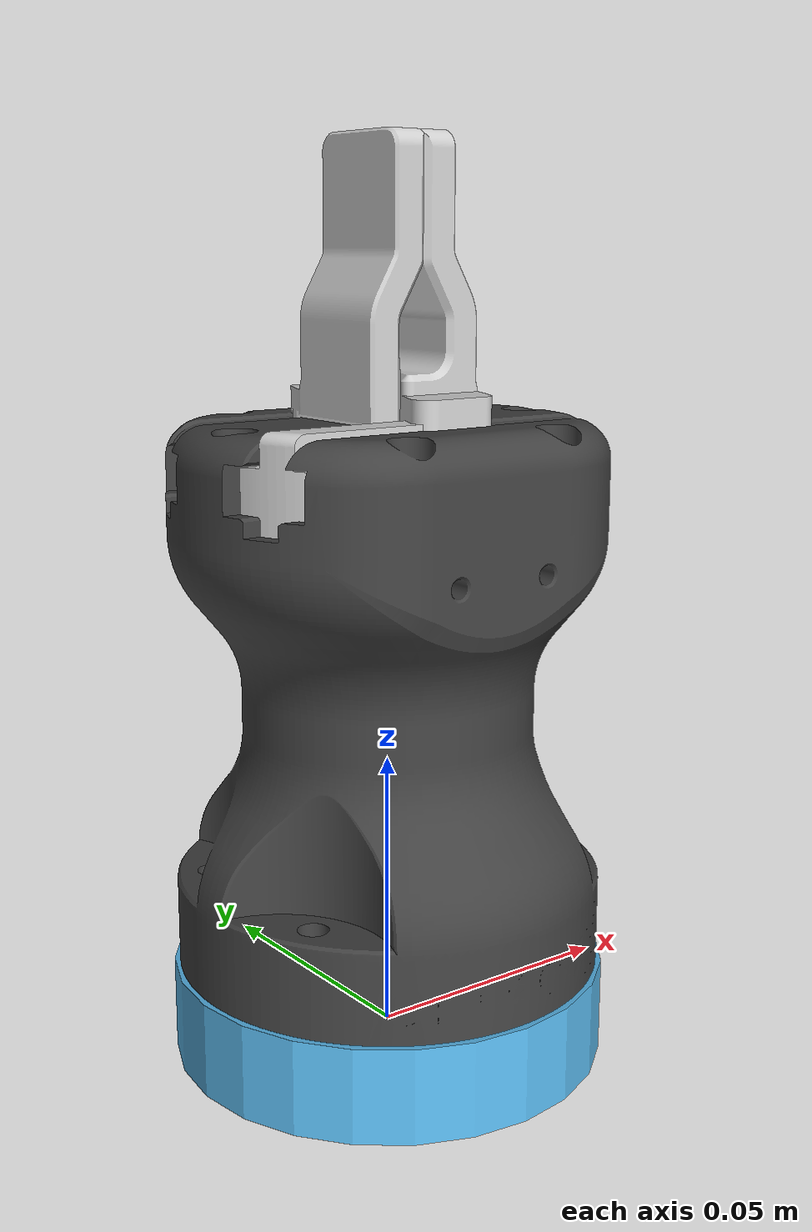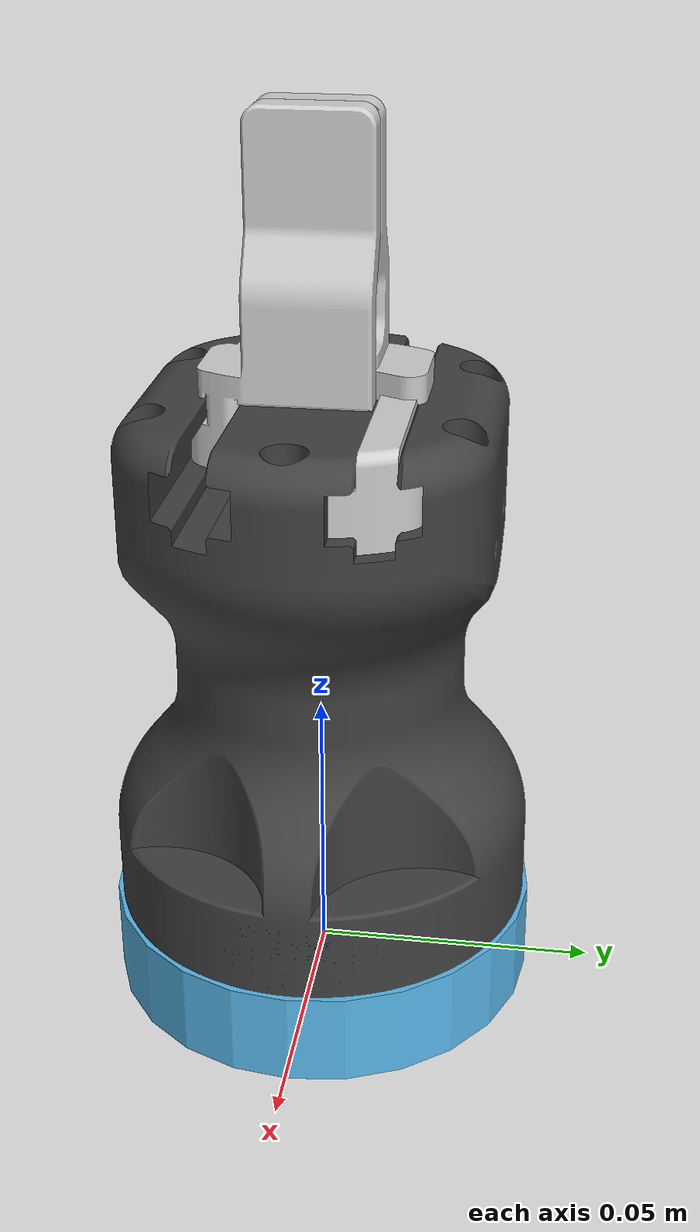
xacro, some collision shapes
<?xml version="1.0"?>
<robot xmlns:xacro="http://ros.org/wiki/xacro" name="robotiq_hande_gripper">
  <xacro:arg name="parent" default="tool0"/>
  <xacro:arg name="grip_pos_min" default="0"/>
  <xacro:arg name="grip_pos_max" default="0.025"/>
  <xacro:arg name="tty_port" default="/tmp/ttyUR"/>
  <xacro:arg name="baudrate" default="115200"/>
  <xacro:arg name="parity" default="N"/>
  <xacro:arg name="data_bits" default="8"/>
  <xacro:arg name="stop_bit" default="1"/>
  <xacro:arg name="slave_id" default="9"/>
  <xacro:arg name="frequency_hz" default="10"/>

  <xacro:arg name="create_socat_tty" default="false"/>
  <xacro:arg name="socat_ip_address" default="192.168.100.10"/>
  <xacro:arg name="socat_port" default="54321"/>

  <xacro:arg name="use_fake_hardware" default="true"/>

  <xacro:include filename="$(find robotiq_hande_description)/urdf/robotiq_hande_gripper.xacro"/>

  <link name="$(arg parent)"/>
  <xacro:robotiq_hande_gripper
    name="robotiq_hande_gripper"
    prefix=""
    parent="$(arg parent)"
    grip_pos_min="$(arg grip_pos_min)"
    grip_pos_max="$(arg grip_pos_max)"
    tty_port="$(arg tty_port)"
    baudrate="$(arg baudrate)"
    parity="$(arg parity)"
    data_bits="$(arg data_bits)"
    stop_bit="$(arg stop_bit)"
    slave_id="$(arg slave_id)"
    frequency_hz="$(arg frequency_hz)"
    create_socat_tty="$(arg create_socat_tty)"
    socat_ip_address="$(arg socat_ip_address)"
    socat_port="$(arg socat_port)"
    use_fake_hardware="$(arg use_fake_hardware)"
  />
</robot>

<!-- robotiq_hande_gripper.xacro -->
<robot xmlns:xacro="http://ros.org/wiki/xacro">
  <!--
    Original URDF file by Cristian C Beltran-Hernandez
  -->

  <xacro:include filename="$(find robotiq_hande_description)/urdf/robotiq_hande_gripper.ros2_control.xacro"/>
  <xacro:include filename="$(find robotiq_hande_description)/urdf/cylinder_inertial.xacro"/>

  <xacro:macro
    name="robotiq_hande_gripper"
    params="name
            prefix
            parent
            grip_pos_min
            grip_pos_max
            tty_port
            baudrate
            parity
            data_bits
            stop_bit
            slave_id
            use_fake_hardware
            frequency_hz:=10
            create_socat_tty:=false
            socat_ip_address:=192.168.100.10
            socat_port:=54321
            coupler_mass:=0.119
            xyz:='0 0 0'
            rpy:='0 0 0'"
  >
    <!-- ros2_control parameters  -->
    <xacro:robotiq_hande_ros2_control
      name="${name}"
      prefix="${prefix}"
      grip_pos_min="${grip_pos_min}"
      grip_pos_max="${grip_pos_max}"
      tty_port="${tty_port}"
      baudrate="${baudrate}"
      parity="${parity}"
      data_bits="${data_bits}"
      stop_bit="${stop_bit}"
      slave_id="${slave_id}"
      frequency_hz="${frequency_hz}"
      create_socat_tty="${create_socat_tty}"
      socat_ip_address="${socat_ip_address}"
      socat_port="${socat_port}"
      use_fake_hardware="${use_fake_hardware}"
    />

    <!-- Robotiq Hand-E specs -->
    <!--  + Height added by the IO coupler: 11.0mm -->
    <!--  + Height added by the Hand-E: 99.0mm -->
    <!--  + Coupler mass includes the bolts -->

    <xacro:arg name="coupler_height" default="0.011"/>
    <xacro:arg name="coupler_shell_height" default="0.0169"/>
    <xacro:arg name="coupler_parent_cutoff" default="0.003"/>
    <xacro:arg name="coupler_hande_cutoff" default="0.0029"/>
    <xacro:arg name="hande_height" default="0.099"/>
    <xacro:arg name="hande_radius" default="0.0375"/>

    <joint name="${prefix}robotiq_hande_coupler_joint" type="fixed">
      <origin xyz="${xyz}" rpy="${rpy}"/>
      <parent link="${parent}"/>
      <child link="${prefix}robotiq_hande_coupler"/>
    </joint>

    <link name="${prefix}robotiq_hande_coupler">
      <visual>
        <geometry>
          <mesh filename="package://robotiq_hande_description/meshes/io_coupler.dae"/>
        </geometry>
      </visual>

      <collision>
        <origin xyz="0 0 ${$(arg coupler_shell_height)/2 - $(arg coupler_parent_cutoff)}" rpy="0 0 0"/>
        <geometry>
          <cylinder length="$(arg coupler_shell_height)" radius="${$(arg hande_radius) + 0.001}"/>
        </geometry>
      </collision>

      <xacro:__robotiq_hande_cylinder_inertial radius="$(arg hande_radius)" height="$(arg coupler_shell_height)" mass="${coupler_mass}">
        <origin xyz="0 0 ${$(arg coupler_shell_height) / 2 - $(arg coupler_parent_cutoff)}" rpy="0 0 0"/>
      </xacro:__robotiq_hande_cylinder_inertial>
    </link>

    <joint name="${prefix}robotiq_hande_base_joint" type="fixed">
      <origin xyz="0 0 $(arg coupler_height)" rpy="0 0 0"/>
      <parent link="${prefix}robotiq_hande_coupler"/>
      <child link="${prefix}robotiq_hande_link"/>
    </joint>

    <link name="${prefix}robotiq_hande_link">
      <visual>
        <origin xyz="0 0 0" rpy="0 0 0"/>
        <geometry>
          <mesh filename="package://robotiq_hande_description/meshes/hande.dae" scale="1.0 1.0 1.0"/>
        </geometry>
      </visual>

      <collision>
        <origin xyz="0 0 ${($(arg hande_height) + $(arg coupler_hande_cutoff) + 0.005) / 2}" rpy="0 0 0"/>
        <geometry>
          <cylinder length="${$(arg hande_height) + $(arg coupler_hande_cutoff) + 0.005}" radius="${$(arg hande_radius) + 0.001}"/>
        </geometry>
      </collision>

      <xacro:__robotiq_hande_cylinder_inertial radius="$(arg hande_radius)" height="$(arg hande_height)" mass="0.86387">
        <origin xyz="0 0 ${$(arg hande_height) / 2}" rpy="0 0 0"/>
      </xacro:__robotiq_hande_cylinder_inertial>
    </link>

    <joint name="${prefix}robotiq_hande_left_finger_joint" type="prismatic">
      <origin xyz="0 0 $(arg hande_height)" rpy="0 0 0"/>
      <parent link="${prefix}robotiq_hande_link"/>
      <child link="${prefix}robotiq_hande_left_finger"/>
      <axis xyz="1 0 0"/>
      <limit effort="130" lower="${grip_pos_min}" upper="${grip_pos_max}" velocity="0.15"/>
    </joint>

    <link name="${prefix}robotiq_hande_left_finger">
      <visual>
        <origin xyz="0 0 0" rpy="0 0 0"/>
        <geometry>
          <mesh filename="package://robotiq_hande_description/meshes/finger.dae" scale="1.0 1.0 1.0"/>
        </geometry>
      </visual>

      <collision>
        <origin xyz="0 0 0" rpy="0 0 0"/>
        <geometry>
          <mesh filename="package://robotiq_hande_description/meshes/finger_collision.dae" scale="1.0 1.0 1.0"/>
        </geometry>
      </collision>

      <inertial>
        <origin xyz="0 0 0" rpy="0 0 0"/>
        <mass value="0.03804"/>
        <inertia ixx="1E-9" ixy="0.0" ixz="0.0" iyy="1E-9" iyz="0.0" izz="1E-9"/>
      </inertial>
    </link>

    <joint name="${prefix}robotiq_hande_right_finger_joint" type="prismatic">
      <origin xyz="0 0 $(arg hande_height)" rpy="0 0 0"/>
      <parent link="${prefix}robotiq_hande_link"/>
      <child link="${prefix}robotiq_hande_right_finger"/>
      <axis xyz="-1 0 0"/>
      <limit effort="130" lower="${grip_pos_min}" upper="${grip_pos_max}" velocity="0.15"/>
      <mimic joint="${prefix}robotiq_hande_left_finger_joint" multiplier="1" offset="0"/>
    </joint>

    <link name="${prefix}robotiq_hande_right_finger">
      <visual>
        <origin xyz="0 0 0" rpy="0 0 ${pi}"/>
        <geometry>
          <mesh filename="package://robotiq_hande_description/meshes/finger.dae" scale="1.0 1.0 1.0"/>
        </geometry>
      </visual>

      <collision>
        <origin xyz="0 0 0" rpy="0 0 ${pi}"/>
        <geometry>
          <mesh filename="package://robotiq_hande_description/meshes/finger_collision.dae" scale="1.0 1.0 1.0"/>
        </geometry>
      </collision>

      <inertial>
        <origin xyz="0 0 0" rpy="0 0 0"/>
        <mass value="0.03804"/>
        <inertia ixx="1E-9" ixy="0.0" ixz="0.0" iyy="1E-9" iyz="0.0" izz="1E-9"/>
      </inertial>
    </link>

    <joint name="${prefix}robotiq_hande_end_joint" type="fixed">
      <origin xyz="0 0 ${$(arg hande_height) + 0.0465}" rpy="0 0 0"/>
      <parent link="${prefix}robotiq_hande_link"/>
      <child link="${prefix}robotiq_hande_end"/>
    </joint>

    <link name="${prefix}robotiq_hande_end"/>
  </xacro:macro>
</robot>

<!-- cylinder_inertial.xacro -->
<robot xmlns:xacro="http://ros.org/wiki/xacro">
  <xacro:macro name="__robotiq_hande_cylinder_inertial" params="radius height mass *origin">
    <inertial>
      <mass value="${mass}"/>
      <xacro:insert_block name="origin"/>
      <inertia
        ixx="${0.0833333 * mass * (3 * (radius * radius) + height * height)}"
        ixy="0.0"
        ixz="0.0"
        iyy="${0.0833333 * mass * (3 * (radius * radius) + height * height)}"
        iyz="0.0"
        izz="${0.5 * mass * (radius * radius)}"
      />
    </inertial>
  </xacro:macro>
</robot>
